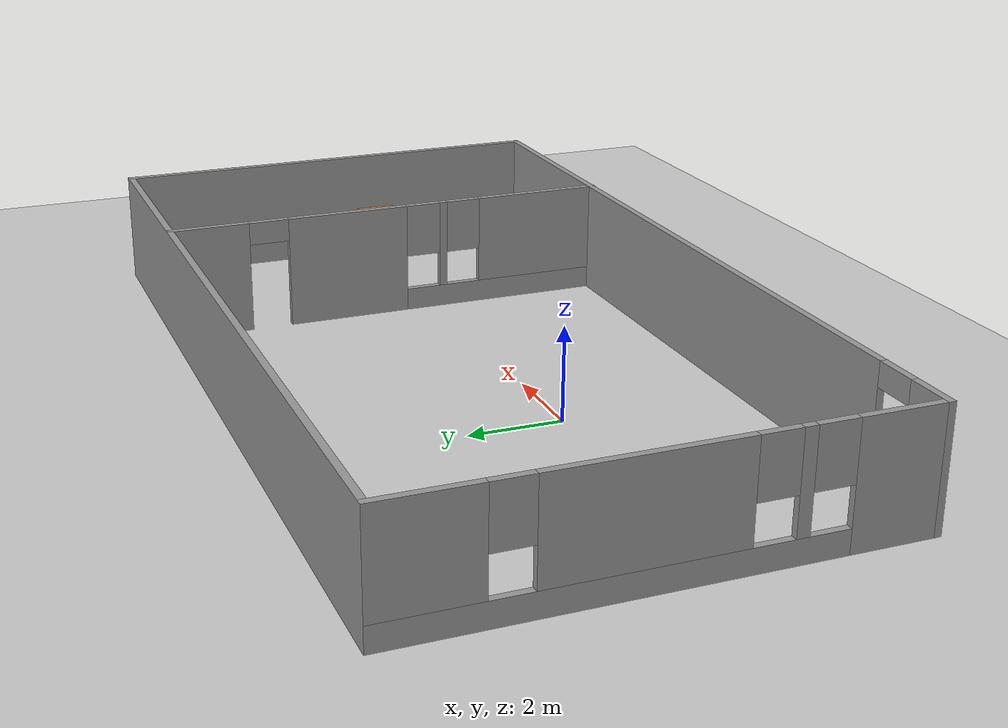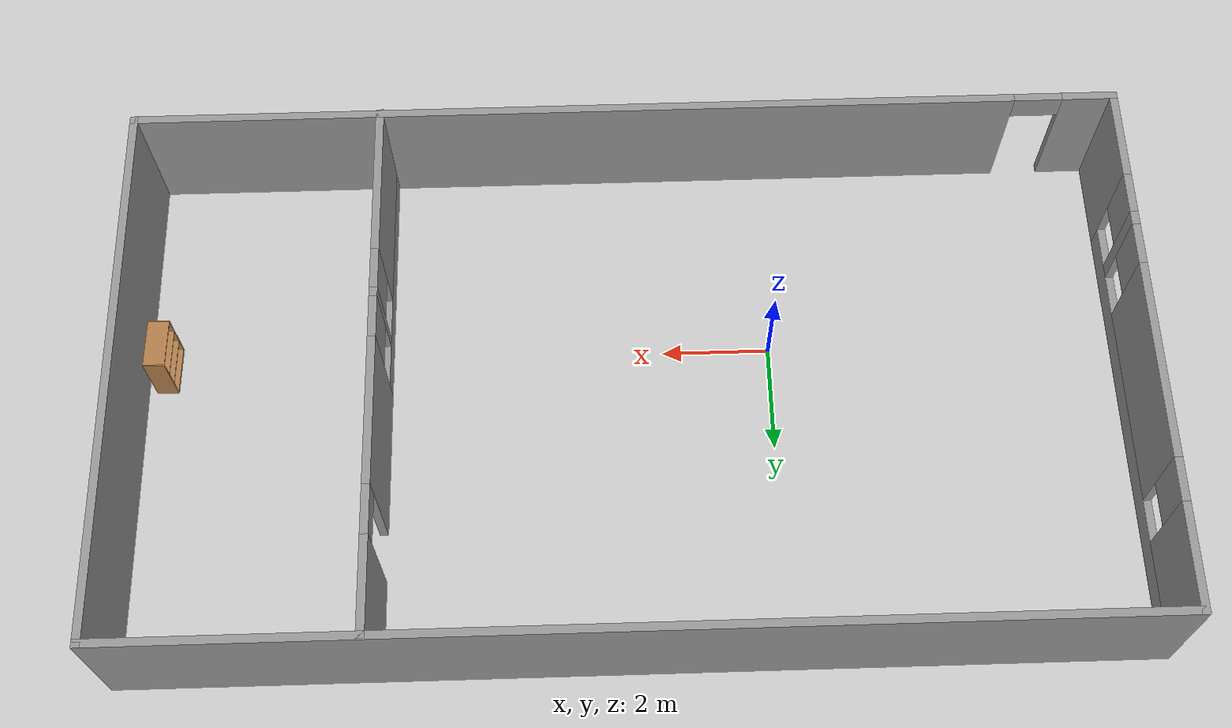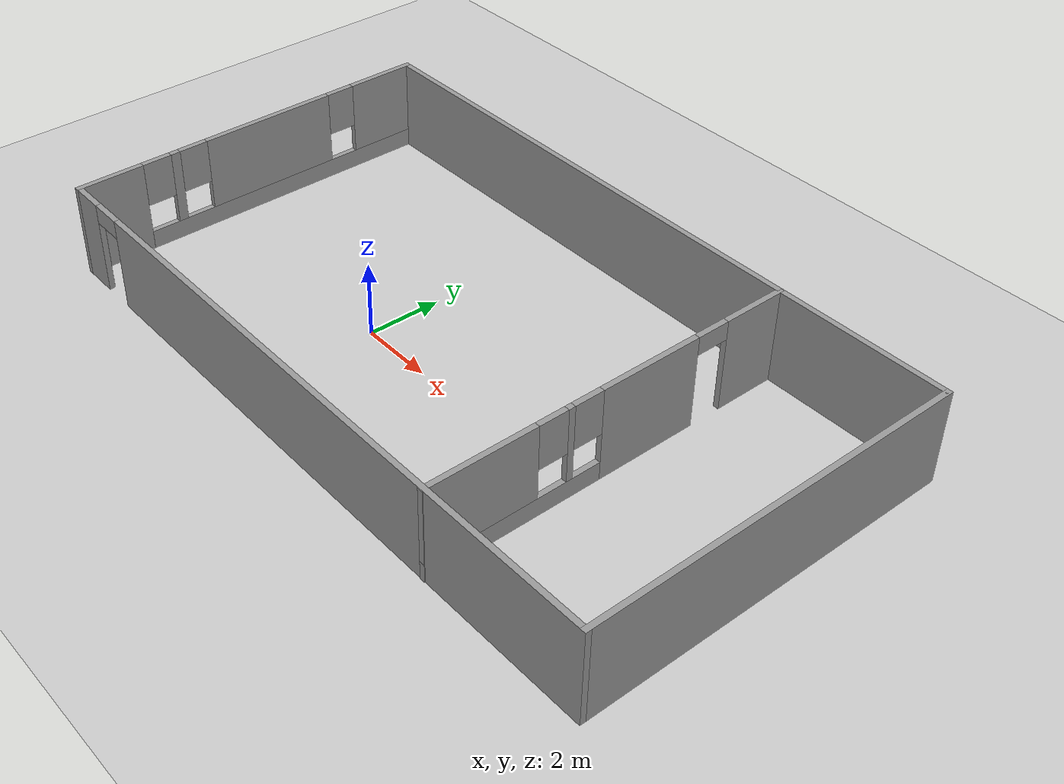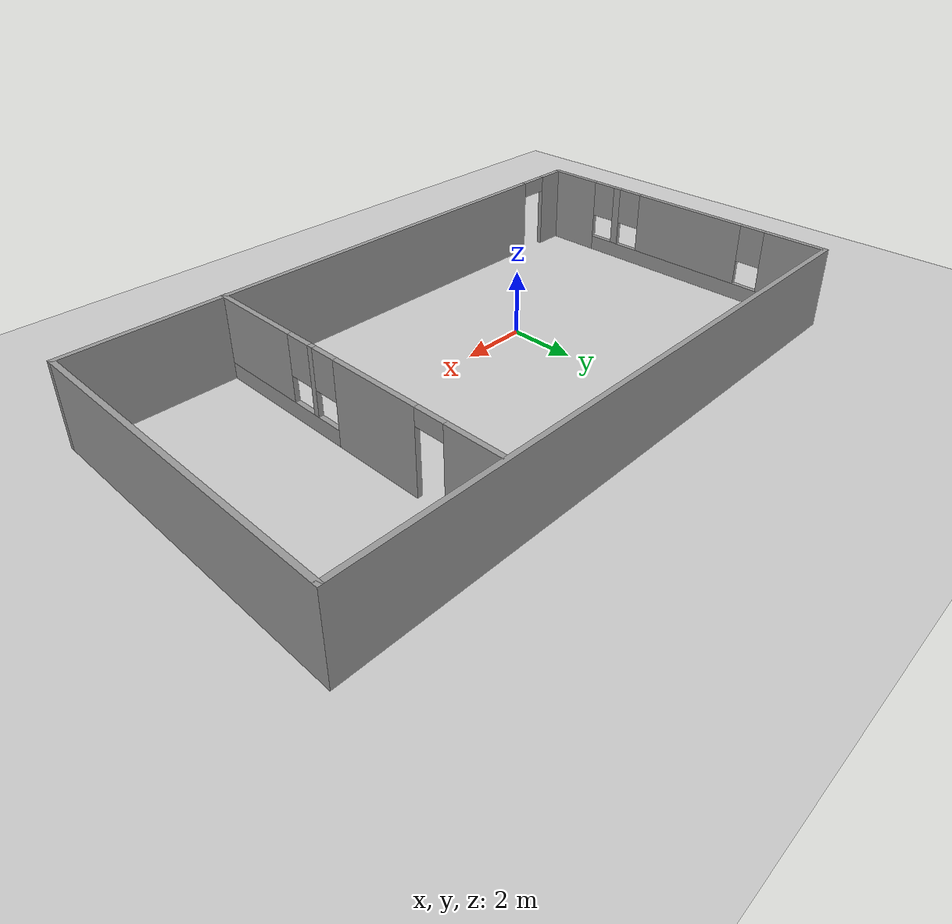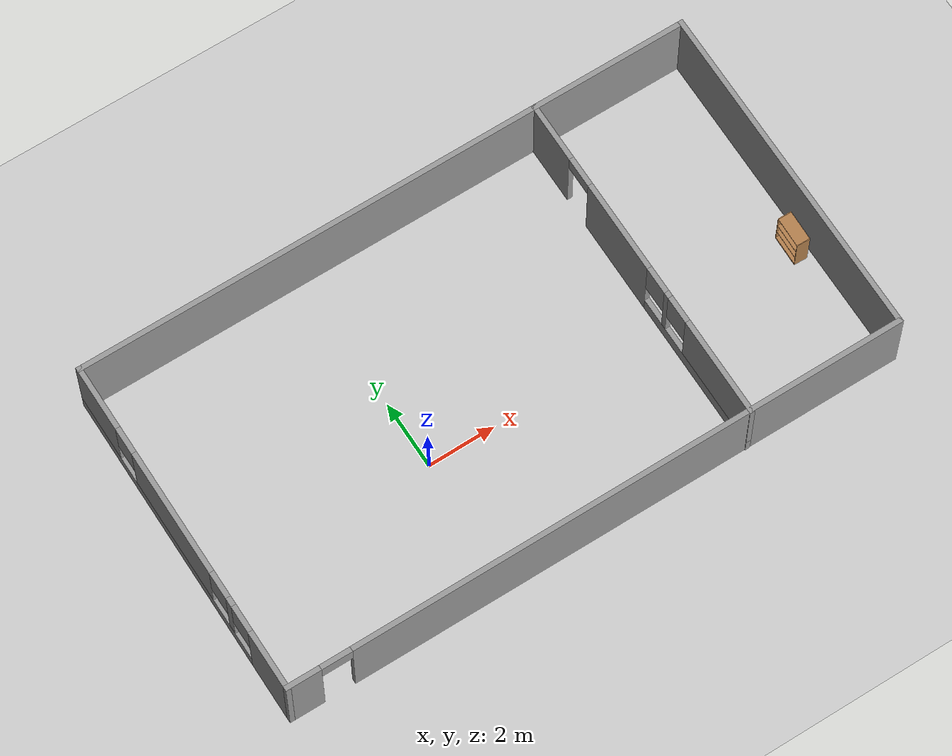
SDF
<sdf version="1.7">
 <world name="default">
  <plugin name="gazebo_ros_factory" filename="libgazebo_ros_factory.so"/>
  <light name="sun" type="directional">
   <pose>0 0 10 0 -0 0</pose>
   <diffuse>0.8 0.8 0.8 1</diffuse>
   <specular>0.2 0.2 0.2 1</specular>
   <attenuation>
    <range>1000</range>
    <constant>0.9</constant>
    <linear>0.01</linear>
    <quadratic>0.001</quadratic>
   </attenuation>
   <direction>-0.5 0.1 -0.9</direction>
   <spot><inner_angle>0</inner_angle><outer_angle>0</outer_angle><falloff>0</falloff></spot>
  </light>
  <model name="ground_plane">
   <static>1</static>
   <link name="link">
    <collision name="collision">
     <geometry><plane><normal>0 0 1</normal><size>100 100</size></plane></geometry>
     <surface>
      <contact><collide_bitmask>65535</collide_bitmask></contact>
      <friction><ode><mu>100</mu><mu2>50</mu2></ode></friction>
     </surface>
    </collision>
    <visual name="visual">
     <cast_shadows>0</cast_shadows>
     <geometry><plane><normal>0 0 1</normal><size>100 100</size></plane></geometry>
     <material>
      <script><uri>file://media/materials/scripts/gazebo.material</uri><name>Gazebo/Grey</name></script>
     </material>
    </visual>
   </link>
  </model>
  <gravity>0 0 -9.8</gravity>
  <magnetic_field>6e-06 2.3e-05 -4.2e-05</magnetic_field>
  <atmosphere type="adiabatic"/>
  <physics type="ode">
   <max_step_size>0.001</max_step_size>
   <real_time_factor>1</real_time_factor>
   <real_time_update_rate>1000</real_time_update_rate>
  </physics>
  <scene><ambient>0.4 0.4 0.4 1</ambient><background>0.7 0.7 0.7 1</background><shadows>1</shadows></scene>
  <audio><device>default</device></audio>
  <spherical_coordinates>
   <surface_model>EARTH_WGS84</surface_model>
   <latitude_deg>0</latitude_deg>
   <longitude_deg>0</longitude_deg>
   <elevation>0</elevation>
   <heading_deg>0</heading_deg>
  </spherical_coordinates>
  <model name="test_building">
   <pose>2.59502 1.10544 0 0 -0 0</pose>
   <link name="Wall_13">
    <pose>-9.175 0.008757 0 0 -0 1.5708</pose>
    <visual name="Wall_13_Visual_0">
     <pose>-4.21554 0 1.25 0 -0 0</pose>
     <geometry><box><size>1.81892 0.15 2.5</size></box></geometry>
     <material>
      <script><uri>file://media/materials/scripts/gazebo.material</uri><name>Gazebo/Grey</name></script>
      <ambient>1 1 1 1</ambient>
     </material>
     <meta><layer>0</layer></meta>
    </visual>
    <collision name="Wall_13_Collision_0">
     <geometry><box><size>1.81892 0.15 2.5</size></box></geometry>
     <pose>-4.21554 0 1.25 0 -0 0</pose>
    </collision>
    <visual name="Wall_13_Visual_1">
     <pose>0.909458 0 0.25 0 -0 0</pose>
     <geometry><box><size>8.43108 0.15 0.5</size></box></geometry>
     <material>
      <script><uri>file://media/materials/scripts/gazebo.material</uri><name>Gazebo/Grey</name></script>
      <ambient>1 1 1 1</ambient>
     </material>
     <meta><layer>0</layer></meta>
    </visual>
    <collision name="Wall_13_Collision_1">
     <geometry><box><size>8.43108 0.15 0.5</size></box></geometry>
     <pose>0.909458 0 0.25 0 -0 0</pose>
    </collision>
    <visual name="Wall_13_Visual_2">
     <pose>-2.37589 0 1.5 0 -0 0</pose>
     <geometry><box><size>0.260387 0.15 2</size></box></geometry>
     <material>
      <script><uri>file://media/materials/scripts/gazebo.material</uri><name>Gazebo/Grey</name></script>
      <ambient>1 1 1 1</ambient>
     </material>
     <meta><layer>0</layer></meta>
    </visual>
    <collision name="Wall_13_Collision_2">
     <geometry><box><size>0.260387 0.15 2</size></box></geometry>
     <pose>-2.37589 0 1.5 0 -0 0</pose>
    </collision>
    <visual name="Wall_13_Visual_3">
     <pose>0.44703 0 1.5 0 -0 0</pose>
     <geometry><box><size>3.78546 0.15 2</size></box></geometry>
     <material>
      <script><uri>file://media/materials/scripts/gazebo.material</uri><name>Gazebo/Grey</name></script>
      <ambient>1 1 1 1</ambient>
     </material>
     <meta><layer>0</layer></meta>
    </visual>
    <collision name="Wall_13_Collision_3">
     <geometry><box><size>3.78546 0.15 2</size></box></geometry>
     <pose>0.44703 0 1.5 0 -0 0</pose>
    </collision>
    <visual name="Wall_13_Visual_4">
     <pose>4.13238 0 1.5 0 -0 0</pose>
     <geometry><box><size>1.98524 0.15 2</size></box></geometry>
     <material>
      <script><uri>file://media/materials/scripts/gazebo.material</uri><name>Gazebo/Grey</name></script>
      <ambient>1 1 1 1</ambient>
     </material>
     <meta><layer>0</layer></meta>
    </visual>
    <collision name="Wall_13_Collision_4">
     <geometry><box><size>1.98524 0.15 2</size></box></geometry>
     <pose>4.13238 0 1.5 0 -0 0</pose>
    </collision>
    <visual name="Wall_13_Visual_5">
     <pose>-2.90609 0 1.9 0 -0 0</pose>
     <geometry><box><size>0.8 0.15 1.2</size></box></geometry>
     <material>
      <script><uri>file://media/materials/scripts/gazebo.material</uri><name>Gazebo/Grey</name></script>
      <ambient>1 1 1 1</ambient>
     </material>
     <meta><layer>0</layer></meta>
    </visual>
    <collision name="Wall_13_Collision_5">
     <geometry><box><size>0.8 0.15 1.2</size></box></geometry>
     <pose>-2.90609 0 1.9 0 -0 0</pose>
    </collision>
    <visual name="Wall_13_Visual_6">
     <pose>-1.8457 0 1.9 0 -0 0</pose>
     <geometry><box><size>0.8 0.15 1.2</size></box></geometry>
     <material>
      <script><uri>file://media/materials/scripts/gazebo.material</uri><name>Gazebo/Grey</name></script>
      <ambient>1 1 1 1</ambient>
     </material>
     <meta><layer>0</layer></meta>
    </visual>
    <collision name="Wall_13_Collision_6">
     <geometry><box><size>0.8 0.15 1.2</size></box></geometry>
     <pose>-1.8457 0 1.9 0 -0 0</pose>
    </collision>
    <visual name="Wall_13_Visual_7">
     <pose>2.73976 0 1.9 0 -0 0</pose>
     <geometry><box><size>0.8 0.15 1.2</size></box></geometry>
     <material>
      <script><uri>file://media/materials/scripts/gazebo.material</uri><name>Gazebo/Grey</name></script>
      <ambient>1 1 1 1</ambient>
     </material>
     <meta><layer>0</layer></meta>
    </visual>
    <collision name="Wall_13_Collision_7">
     <geometry><box><size>0.8 0.15 1.2</size></box></geometry>
     <pose>2.73976 0 1.9 0 -0 0</pose>
    </collision>
   </link>
   <link name="Wall_14">
    <collision name="Wall_14_Collision">
     <geometry><box><size>18.5 0.15 2.5</size></box></geometry>
     <pose>0 0 1.25 0 -0 0</pose>
    </collision>
    <visual name="Wall_14_Visual">
     <pose>0 0 1.25 0 -0 0</pose>
     <geometry><box><size>18.5 0.15 2.5</size></box></geometry>
     <material>
      <script><uri>file://media/materials/scripts/gazebo.material</uri><name>Gazebo/Grey</name></script>
      <ambient>1 1 1 1</ambient>
     </material>
     <meta><layer>0</layer></meta>
    </visual>
    <pose>0 5.05876 0 0 -0 0</pose>
   </link>
   <link name="Wall_15">
    <collision name="Wall_15_Collision">
     <geometry><box><size>10.25 0.15 2.5</size></box></geometry>
     <pose>0 0 1.25 0 -0 0</pose>
    </collision>
    <visual name="Wall_15_Visual">
     <pose>0 0 1.25 0 -0 0</pose>
     <geometry><box><size>10.25 0.15 2.5</size></box></geometry>
     <material>
      <script><uri>file://media/materials/scripts/gazebo.material</uri><name>Gazebo/Grey</name></script>
      <ambient>1 1 1 1</ambient>
     </material>
     <meta><layer>0</layer></meta>
    </visual>
    <pose>9.175 0.008757 0 0 -0 -1.5708</pose>
   </link>
   <link name="Wall_16">
    <pose>0 -5.04124 0 0 -0 3.14159</pose>
    <visual name="Wall_16_Visual_0">
     <pose>-0.969769 0 1.25 0 -0 0</pose>
     <geometry><box><size>16.5605 0.15 2.5</size></box></geometry>
     <material>
      <script><uri>file://media/materials/scripts/gazebo.material</uri><name>Gazebo/Grey</name></script>
      <ambient>1 1 1 1</ambient>
     </material>
     <meta><layer>0</layer></meta>
    </visual>
    <collision name="Wall_16_Collision_0">
     <geometry><box><size>16.5605 0.15 2.5</size></box></geometry>
     <pose>-0.969769 0 1.25 0 -0 0</pose>
    </collision>
    <visual name="Wall_16_Visual_1">
     <pose>8.73023 0 1.25 0 -0 0</pose>
     <geometry><box><size>1.03954 0.15 2.5</size></box></geometry>
     <material>
      <script><uri>file://media/materials/scripts/gazebo.material</uri><name>Gazebo/Grey</name></script>
      <ambient>1 1 1 1</ambient>
     </material>
     <meta><layer>0</layer></meta>
    </visual>
    <collision name="Wall_16_Collision_1">
     <geometry><box><size>1.03954 0.15 2.5</size></box></geometry>
     <pose>8.73023 0 1.25 0 -0 0</pose>
    </collision>
    <visual name="Wall_16_Visual_2">
     <pose>7.76046 0 2.25 0 -0 0</pose>
     <geometry><box><size>0.9 0.15 0.5</size></box></geometry>
     <material>
      <script><uri>file://media/materials/scripts/gazebo.material</uri><name>Gazebo/Grey</name></script>
      <ambient>1 1 1 1</ambient>
     </material>
     <meta><layer>0</layer></meta>
    </visual>
    <collision name="Wall_16_Collision_2">
     <geometry><box><size>0.9 0.15 0.5</size></box></geometry>
     <pose>7.76046 0 2.25 0 -0 0</pose>
    </collision>
   </link>
   <link name="Wall_19">
    <pose>4.59161 -0.008758 0 0 -0 -1.5708</pose>
    <visual name="Wall_19_Visual_0">
     <pose>-4.22345 0 1.25 0 -0 0</pose>
     <geometry><box><size>1.80309 0.15 2.5</size></box></geometry>
     <material>
      <script><uri>file://media/materials/scripts/gazebo.material</uri><name>Gazebo/Grey</name></script>
      <ambient>1 1 1 1</ambient>
     </material>
     <meta><layer>0</layer></meta>
    </visual>
    <collision name="Wall_19_Collision_0">
     <geometry><box><size>1.80309 0.15 2.5</size></box></geometry>
     <pose>-4.22345 0 1.25 0 -0 0</pose>
    </collision>
    <visual name="Wall_19_Visual_1">
     <pose>-1.02706 0 1.25 0 -0 0</pose>
     <geometry><box><size>2.78971 0.15 2.5</size></box></geometry>
     <material>
      <script><uri>file://media/materials/scripts/gazebo.material</uri><name>Gazebo/Grey</name></script>
      <ambient>1 1 1 1</ambient>
     </material>
     <meta><layer>0</layer></meta>
    </visual>
    <collision name="Wall_19_Collision_1">
     <geometry><box><size>2.78971 0.15 2.5</size></box></geometry>
     <pose>-1.02706 0 1.25 0 -0 0</pose>
    </collision>
    <visual name="Wall_19_Visual_2">
     <pose>2.7464 0 0.25 0 -0 0</pose>
     <geometry><box><size>4.7572 0.15 0.5</size></box></geometry>
     <material>
      <script><uri>file://media/materials/scripts/gazebo.material</uri><name>Gazebo/Grey</name></script>
      <ambient>1 1 1 1</ambient>
     </material>
     <meta><layer>0</layer></meta>
    </visual>
    <collision name="Wall_19_Collision_2">
     <geometry><box><size>4.7572 0.15 0.5</size></box></geometry>
     <pose>2.7464 0 0.25 0 -0 0</pose>
    </collision>
    <visual name="Wall_19_Visual_3">
     <pose>1.255 0 1.5 0 -0 0</pose>
     <geometry><box><size>0.174409 0.15 2</size></box></geometry>
     <material>
      <script><uri>file://media/materials/scripts/gazebo.material</uri><name>Gazebo/Grey</name></script>
      <ambient>1 1 1 1</ambient>
     </material>
     <meta><layer>0</layer></meta>
    </visual>
    <collision name="Wall_19_Collision_3">
     <geometry><box><size>0.174409 0.15 2</size></box></geometry>
     <pose>1.255 0 1.5 0 -0 0</pose>
    </collision>
    <visual name="Wall_19_Visual_4">
     <pose>3.6336 0 1.5 0 -0 0</pose>
     <geometry><box><size>2.98279 0.15 2</size></box></geometry>
     <material>
      <script><uri>file://media/materials/scripts/gazebo.material</uri><name>Gazebo/Grey</name></script>
      <ambient>1 1 1 1</ambient>
     </material>
     <meta><layer>0</layer></meta>
    </visual>
    <collision name="Wall_19_Collision_4">
     <geometry><box><size>2.98279 0.15 2</size></box></geometry>
     <pose>3.6336 0 1.5 0 -0 0</pose>
    </collision>
    <visual name="Wall_19_Visual_5">
     <pose>0.767797 0 1.9 0 -0 0</pose>
     <geometry><box><size>0.8 0.15 1.2</size></box></geometry>
     <material>
      <script><uri>file://media/materials/scripts/gazebo.material</uri><name>Gazebo/Grey</name></script>
      <ambient>1 1 1 1</ambient>
     </material>
     <meta><layer>0</layer></meta>
    </visual>
    <collision name="Wall_19_Collision_5">
     <geometry><box><size>0.8 0.15 1.2</size></box></geometry>
     <pose>0.767797 0 1.9 0 -0 0</pose>
    </collision>
    <visual name="Wall_19_Visual_6">
     <pose>1.74221 0 1.9 0 -0 0</pose>
     <geometry><box><size>0.8 0.15 1.2</size></box></geometry>
     <material>
      <script><uri>file://media/materials/scripts/gazebo.material</uri><name>Gazebo/Grey</name></script>
      <ambient>1 1 1 1</ambient>
     </material>
     <meta><layer>0</layer></meta>
    </visual>
    <collision name="Wall_19_Collision_6">
     <geometry><box><size>0.8 0.15 1.2</size></box></geometry>
     <pose>1.74221 0 1.9 0 -0 0</pose>
    </collision>
    <visual name="Wall_19_Visual_7">
     <pose>-2.87191 0 2.25 0 -0 0</pose>
     <geometry><box><size>0.9 0.15 0.5</size></box></geometry>
     <material>
      <script><uri>file://media/materials/scripts/gazebo.material</uri><name>Gazebo/Grey</name></script>
      <ambient>1 1 1 1</ambient>
     </material>
     <meta><layer>0</layer></meta>
    </visual>
    <collision name="Wall_19_Collision_7">
     <geometry><box><size>0.9 0.15 0.5</size></box></geometry>
     <pose>-2.87191 0 2.25 0 -0 0</pose>
    </collision>
   </link>
   <static>1</static>
  </model>
  <model name="bookshelf">
   <static>1</static>
   <link name="link">
    <inertial><mass>1</mass></inertial>
    <collision name="back">
     <pose>0 0.005 0.6 0 -0 0</pose>
     <geometry><box><size>0.9 0.01 1.2</size></box></geometry>
    </collision>
    <visual name="visual1">
     <pose>0 0.005 0.6 0 -0 0</pose>
     <geometry><box><size>0.9 0.01 1.2</size></box></geometry>
     <material>
      <script><uri>file://media/materials/scripts/gazebo.material</uri><name>Gazebo/Wood</name></script>
     </material>
    </visual>
    <collision name="left_side">
     <pose>0.45 -0.195 0.6 0 -0 0</pose>
     <geometry><box><size>0.02 0.4 1.2</size></box></geometry>
    </collision>
    <visual name="visual2">
     <pose>0.45 -0.195 0.6 0 -0 0</pose>
     <geometry><box><size>0.02 0.4 1.2</size></box></geometry>
     <material>
      <script><uri>file://media/materials/scripts/gazebo.material</uri><name>Gazebo/Wood</name></script>
     </material>
    </visual>
    <collision name="right_side">
     <pose>-0.45 -0.195 0.6 0 -0 0</pose>
     <geometry><box><size>0.02 0.4 1.2</size></box></geometry>
    </collision>
    <visual name="visual3">
     <pose>-0.45 -0.195 0.6 0 -0 0</pose>
     <geometry><box><size>0.02 0.4 1.2</size></box></geometry>
     <material>
      <script><uri>file://media/materials/scripts/gazebo.material</uri><name>Gazebo/Wood</name></script>
     </material>
    </visual>
    <collision name="bottom">
     <pose>0 -0.195 0.03 0 -0 0</pose>
     <geometry><box><size>0.88 0.4 0.06</size></box></geometry>
    </collision>
    <visual name="visual4">
     <pose>0 -0.195 0.03 0 -0 0</pose>
     <geometry><box><size>0.88 0.4 0.06</size></box></geometry>
     <material>
      <script><uri>file://media/materials/scripts/gazebo.material</uri><name>Gazebo/Wood</name></script>
     </material>
    </visual>
    <collision name="top">
     <pose>0 -0.195 1.19 0 -0 0</pose>
     <geometry><box><size>0.88 0.4 0.02</size></box></geometry>
    </collision>
    <visual name="visual5">
     <pose>0 -0.195 1.19 0 -0 0</pose>
     <geometry><box><size>0.88 0.4 0.02</size></box></geometry>
     <material>
      <script><uri>file://media/materials/scripts/gazebo.material</uri><name>Gazebo/Wood</name></script>
     </material>
    </visual>
    <collision name="low_shelf">
     <pose>0 -0.195 0.43 0 -0 0</pose>
     <geometry><box><size>0.88 0.4 0.02</size></box></geometry>
    </collision>
    <visual name="visual6">
     <pose>0 -0.195 0.43 0 -0 0</pose>
     <geometry><box><size>0.88 0.4 0.02</size></box></geometry>
     <material>
      <script><uri>file://media/materials/scripts/gazebo.material</uri><name>Gazebo/Wood</name></script>
     </material>
    </visual>
    <collision name="high_shelf">
     <pose>0 -0.195 0.8 0 -0 0</pose>
     <geometry><box><size>0.88 0.4 0.02</size></box></geometry>
    </collision>
    <visual name="visual7">
     <pose>0 -0.195 0.8 0 -0 0</pose>
     <geometry><box><size>0.88 0.4 0.02</size></box></geometry>
     <material>
      <script><uri>file://media/materials/scripts/gazebo.material</uri><name>Gazebo/Wood</name></script>
     </material>
    </visual>
   </link>
   <pose>11.524 0.080324 0 0 0 -1.59154</pose>
  </model>
 </world>
</sdf>
